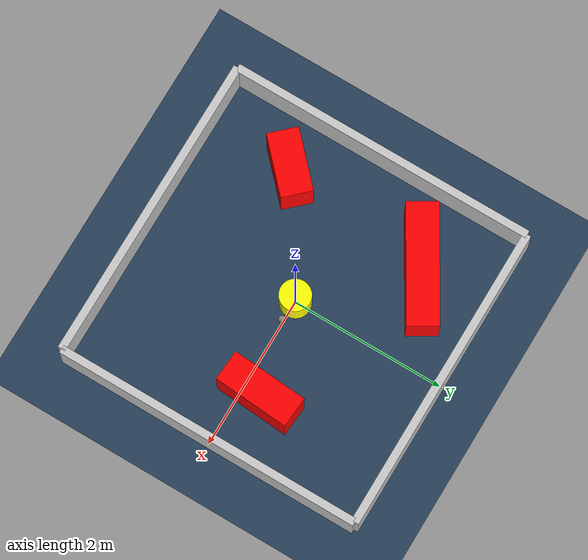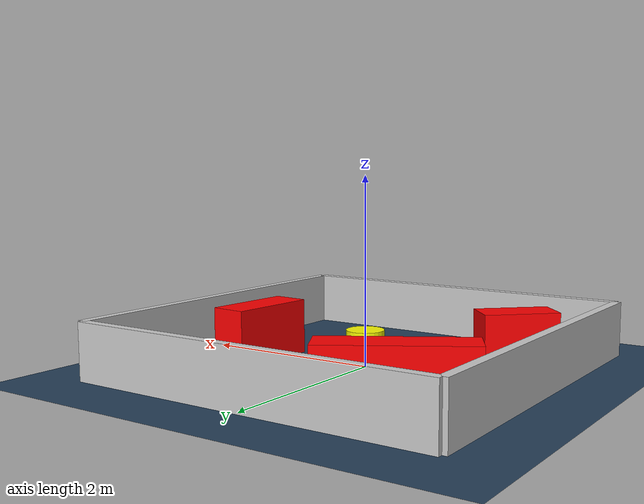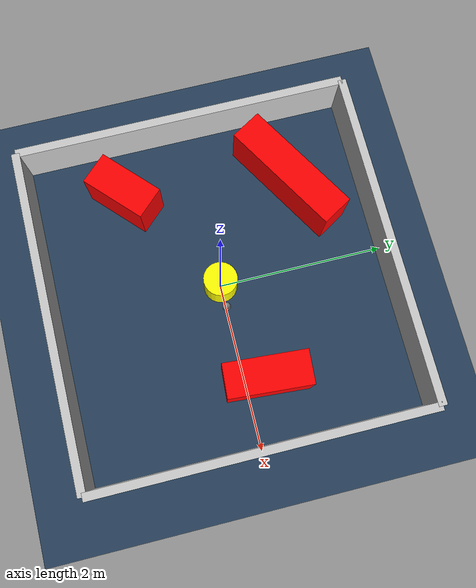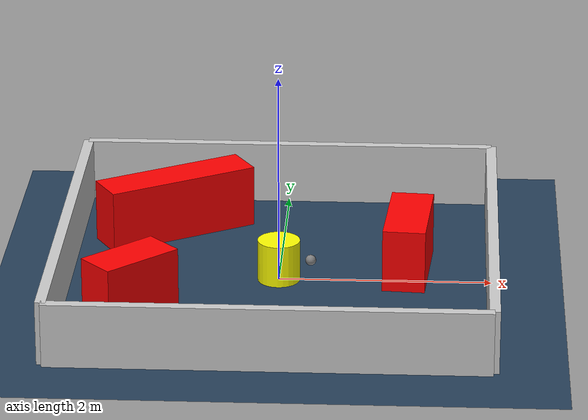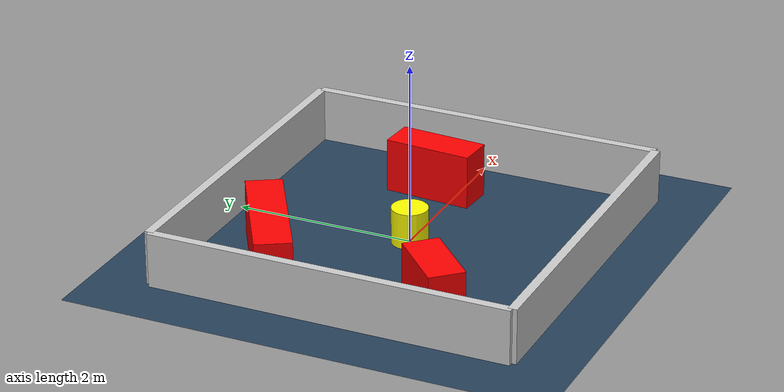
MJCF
<?xml version="1.0" ?>
<mujoco model="generated_environment">
  <option timestep="0.01" integrator="RK4" cone="elliptic"/>
  <default>
    <geom density="1"/>
  </default>
  <asset>
    <texture builtin="gradient" height="3072" rgb1="0.3 0.5 0.7" rgb2="0 0 0" type="skybox" width="512"/>
    <texture builtin="checker" height="300" mark="edge" markrgb="0.8 0.8 0.8" name="groundplane" rgb1="0.2 0.3 0.4" rgb2="0.1 0.2 0.3" type="2d" width="300"/>
    <material name="groundplane" reflectance="0.2" texrepeat="5 5" texture="groundplane" texuniform="true"/>
    <material name="robot" rgba="0.0 1.0 0.0 1"/>
  </asset>
  <worldbody>
    <light dir="0 0 -1" directional="true" pos="0 0 1.5"/>
    <geom condim="4" friction="1.0 0.005 0.001" material="groundplane" name="floor" size="0 0 0.05" type="plane"/>
    <body name="walls">
      <geom name="wall_1" condim="4" pos="-2.0 0.0 0.3" rgba="0.800000011920929 0.800000011920929 0.800000011920929 1.0" size="0.05 2.0 0.3" type="box"/>
      <geom name="wall_2" condim="4" pos="2.0 0.0 0.3" rgba="0.800000011920929 0.800000011920929 0.800000011920929 1.0" size="0.05 2.0 0.3" type="box"/>
      <geom name="wall_3" condim="4" pos="0.0 -2.0 0.3" rgba="0.800000011920929 0.800000011920929 0.800000011920929 1.0" size="2.0 0.05 0.3" type="box"/>
      <geom name="wall_4" condim="4" pos="0.0 2.0 0.3" rgba="0.800000011920929 0.800000011920929 0.800000011920929 1.0" size="2.0 0.05 0.3" type="box"/>
    </body>
    <body name="robot">
      <joint name="joint_x" type="slide" pos="0 0 0" axis="1 0 0"/>
      <joint name="joint_y" type="slide" pos="0 0 0" axis="0 1 0"/>
      <geom name="robot" type="sphere" pos="0.3 0.0 0.2" size="0.05" mass="5." friction="1.0 0.005 0.0001" condim="4" rgba="0.5 0.5 0.5 1.0"/>
      <site name="sensor_ball"/>
    </body>
    <body name="obstacle_movable_1">
      <geom name="obstacle_movable_1" condim="4" pos="0.0 0.0 0.2" euler="0 0 0.0" friction="1.0 0.005 0.001" rgba="1.0 1.0 0.0 1.0" size="0.2 0.2 0.0" type="cylinder" mass="0.1"/>
      <joint type="free"/>
    </body>
    <body name="obstacle_2_static">
      <geom name="obstacle_2_static" condim="4" pos="1.2095486830929638 0.2444157431708367 0.3" euler="0 0 265.8395397777945" friction="1.0 0.005 0.001" rgba="1 0 0 1" size="0.4912583037876158 0.2 0.3" type="box"/>
    </body>
    <body name="obstacle_3_static">
      <geom name="obstacle_3_static" condim="4" pos="-1.064761876325751 1.116361938394007 0.3" euler="0 0 30.70958494490697" friction="1.0 0.005 0.001" rgba="1 0 0 1" size="0.7561908198766107 0.2 0.3" type="box"/>
    </body>
    <body name="obstacle_4_static">
      <geom name="obstacle_4_static" condim="4" pos="-1.3172916468086973 -0.8637160501783888 0.3" euler="0 0 43.28079787512797" friction="1.0 0.005 0.001" rgba="1 0 0 1" size="0.40321818047270924 0.2 0.3" type="box"/>
    </body>
  </worldbody>
  <actuator>
    <motor name="actuator_x" joint="joint_x" gear="1" ctrlrange="-1 1"/>
    <motor name="actuator_y" joint="joint_y" gear="1" ctrlrange="-1 1"/>
  </actuator>
</mujoco>
